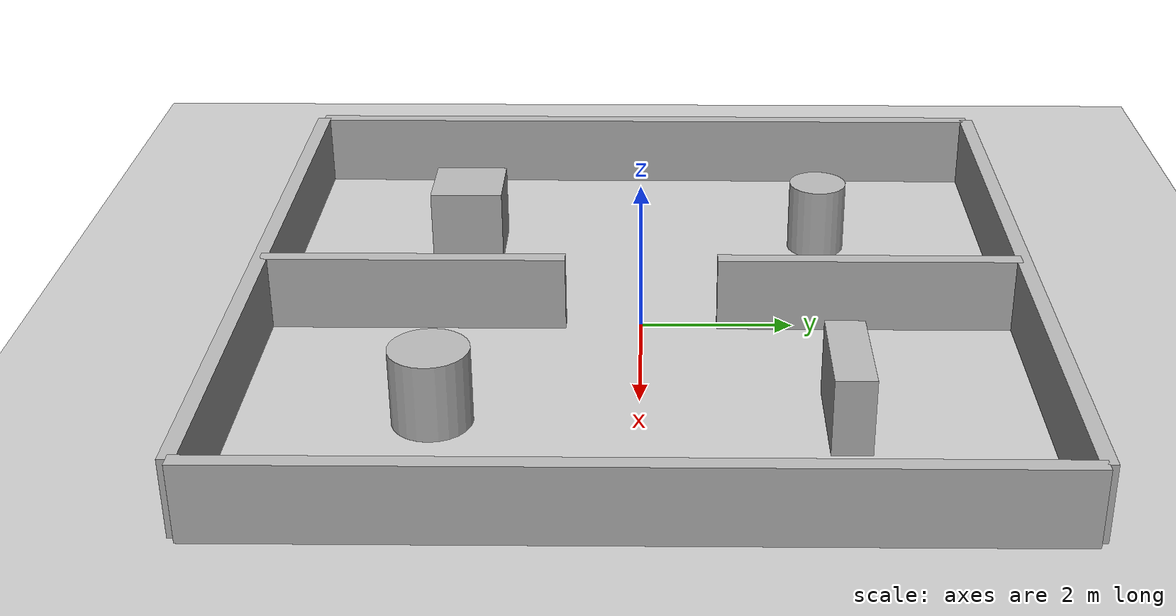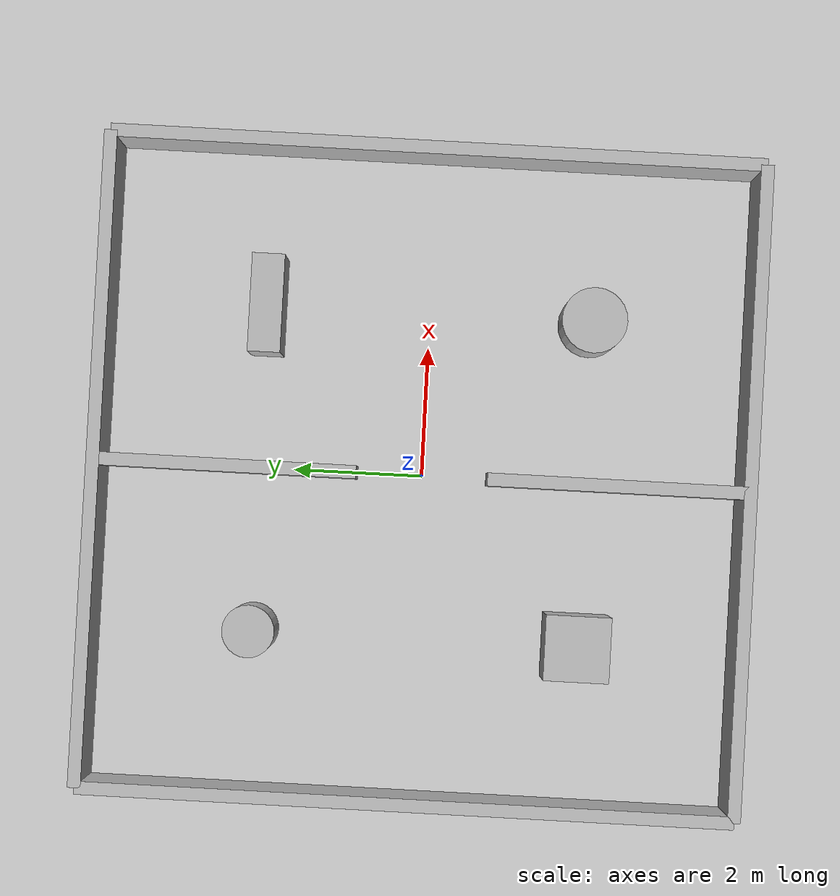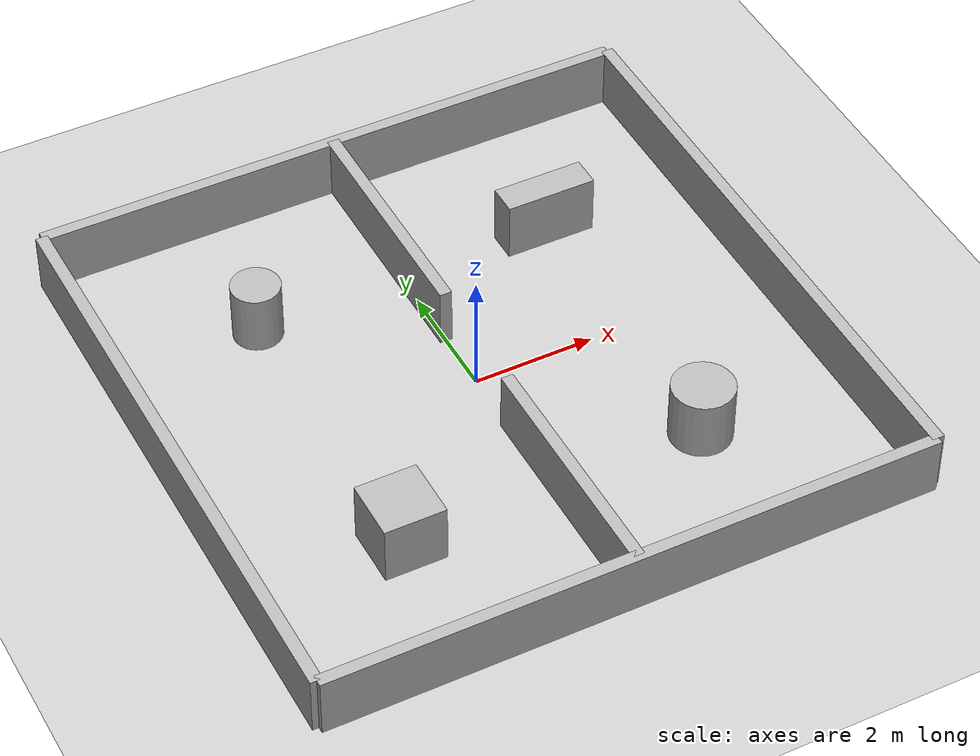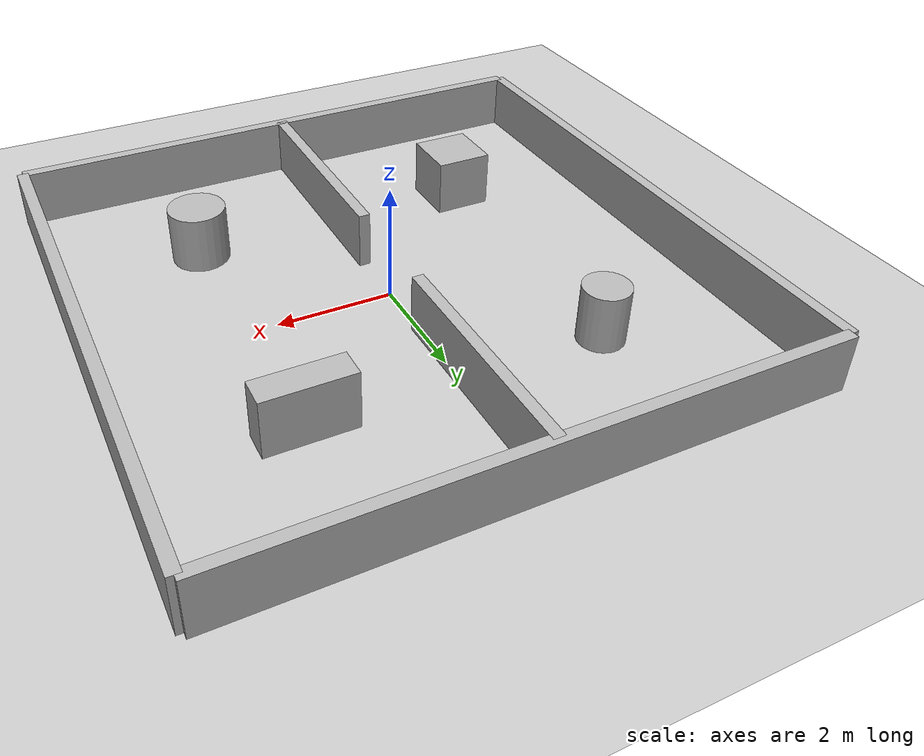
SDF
<?xml version="1.0" ?>
<sdf version="1.6">
  <world name="world_with_obstacles">
  	<scene>
      <ambient>0.4 0.4 0.4 1</ambient>
      <background>0.7 0.7 0.7 1</background>
      <shadows>false</shadows>
    </scene>
    <include>
      <uri>model://sun</uri>
    </include>
    <include>
      <uri>model://ground_plane</uri>
    </include>

    <!-- Outer Walls -->
    <model name="outer_walls">
      <static>true</static>
      <link name="link">
        <collision name="wall_n"><pose>0 5 0.5 0 0 0</pose><geometry><box><size>10 0.2 1</size></box></geometry></collision>
        <visual name="wall_n_vis"><pose>0 5 0.5 0 0 0</pose><geometry><box><size>10 0.2 1</size></box></geometry></visual>
        <collision name="wall_s"><pose>0 -5 0.5 0 0 0</pose><geometry><box><size>10 0.2 1</size></box></geometry></collision>
        <visual name="wall_s_vis"><pose>0 -5 0.5 0 0 0</pose><geometry><box><size>10 0.2 1</size></box></geometry></visual>
        <collision name="wall_e"><pose>5 0 0.5 0 0 0</pose><geometry><box><size>0.2 10 1</size></box></geometry></collision>
        <visual name="wall_e_vis"><pose>5 0 0.5 0 0 0</pose><geometry><box><size>0.2 10 1</size></box></geometry></visual>
        <collision name="wall_w"><pose>-5 0 0.5 0 0 0</pose><geometry><box><size>0.2 10 1</size></box></geometry></collision>
        <visual name="wall_w_vis"><pose>-5 0 0.5 0 0 0</pose><geometry><box><size>0.2 10 1</size></box></geometry></visual>
      </link>
    </model>

    <!-- Central Divider with a gap -->
    <model name="center_divider">
      <static>true</static>
      <link name="link">
        <collision name="div_top"><pose>0 3 0.5 0 0 0</pose><geometry><box><size>0.2 4 1</size></box></geometry></collision>
        <visual name="div_top_vis"><pose>0 3 0.5 0 0 0</pose><geometry><box><size>0.2 4 1</size></box></geometry></visual>
        <collision name="div_bot"><pose>0 -3 0.5 0 0 0</pose><geometry><box><size>0.2 4 1</size></box></geometry></collision>
        <visual name="div_bot_vis"><pose>0 -3 0.5 0 0 0</pose><geometry><box><size>0.2 4 1</size></box></geometry></visual>
      </link>
    </model>

    <!-- Obstacles for Robot 0 (Left Side) -->
    <model name="left_obstacle_1">
      <static>true</static>
      <link name="link">
        <pose>-2.5 2.5 0.5 0 0 0</pose>
        <collision name="col"><geometry><cylinder><radius>0.4</radius><length>1</length></cylinder></geometry></collision>
        <visual name="vis"><geometry><cylinder><radius>0.4</radius><length>1</length></cylinder></geometry></visual>
      </link>
    </model>

    <model name="left_obstacle_2">
      <static>true</static>
      <link name="link">
        <pose>-2.5 -2.5 0.5 0 0 0</pose>
        <collision name="col"><geometry><box><size>1 1 1</size></box></geometry></collision>
        <visual name="vis"><geometry><box><size>1 1 1</size></box></geometry></visual>
      </link>
    </model>

    <!-- Obstacles for Robot 1 (Right Side) -->
    <model name="right_obstacle_1">
      <static>true</static>
      <link name="link">
        <pose>2.5 2.5 0.5 0 0 0</pose>
        <collision name="col"><geometry><box><size>1.5 0.5 1</size></box></geometry></collision>
        <visual name="vis"><geometry><box><size>1.5 0.5 1</size></box></geometry></visual>
      </link>
    </model>

    <model name="right_obstacle_2">
      <static>true</static>
      <link name="link">
        <pose>2.5 -2.5 0.5 0 0 0</pose>
        <collision name="col"><geometry><cylinder><radius>0.5</radius><length>1</length></cylinder></geometry></collision>
        <visual name="vis"><geometry><cylinder><radius>0.5</radius><length>1</length></cylinder></geometry></visual>
      </link>
    </model>

  </world>
</sdf>
